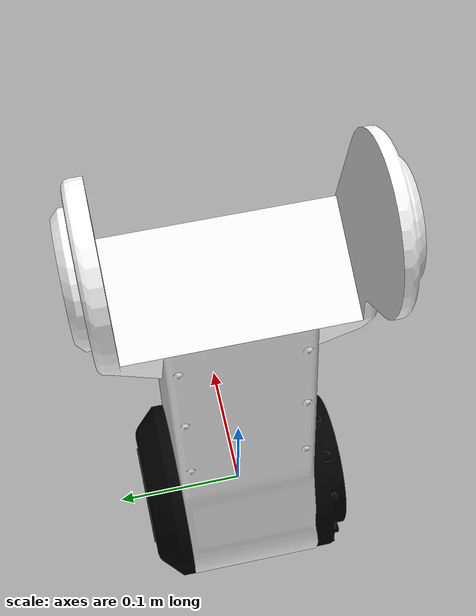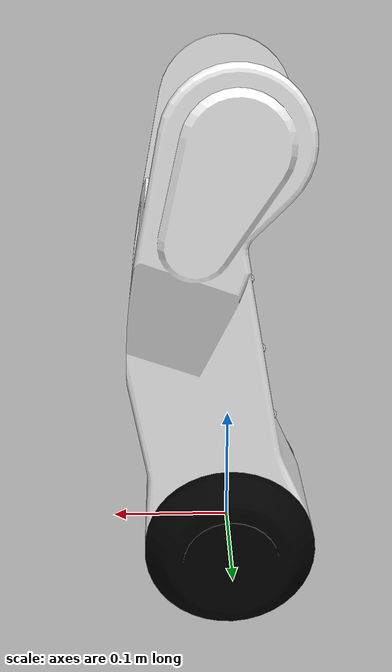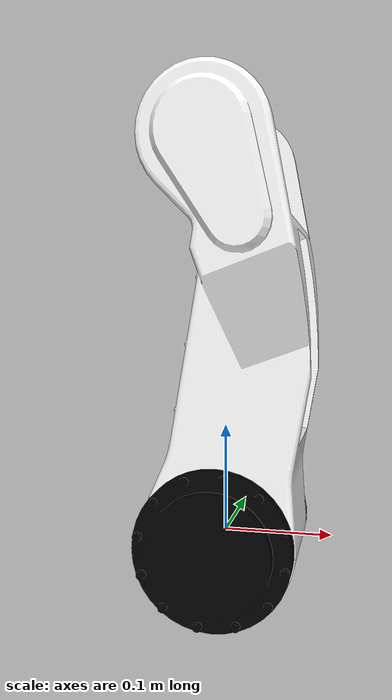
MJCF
<mujoco model="LINK_2">
  <default>
    <default class="visual">
      <geom group="2" type="mesh" contype="0" conaffinity="0"/>
    </default>
    <default class="collision">
      <geom group="3" type="mesh"/>
    </default>
  </default>
  <asset>
    <material name="254,254,255" specular="0.9973853333333333" shininess="1.0" rgba="0.996078 0.996078 1.000000 1.000000"/>
    <material name="0,0,0" specular="1.0" shininess="1.0" rgba="0.000000 0.000000 0.000000 1.000000"/>
    <mesh file="LINK_2_0.obj"/>
    <mesh file="LINK_2_1.obj"/>
    <mesh file="LINK_2_collision_0.obj"/>
    <mesh file="LINK_2_collision_1.obj"/>
    <mesh file="LINK_2_collision_2.obj"/>
    <mesh file="LINK_2_collision_3.obj"/>
    <mesh file="LINK_2_collision_4.obj"/>
    <mesh file="LINK_2_collision_5.obj"/>
    <mesh file="LINK_2_collision_6.obj"/>
    <mesh file="LINK_2_collision_7.obj"/>
    <mesh file="LINK_2_collision_8.obj"/>
    <mesh file="LINK_2_collision_9.obj"/>
    <mesh file="LINK_2_collision_10.obj"/>
    <mesh file="LINK_2_collision_11.obj"/>
    <mesh file="LINK_2_collision_12.obj"/>
    <mesh file="LINK_2_collision_13.obj"/>
    <mesh file="LINK_2_collision_14.obj"/>
    <mesh file="LINK_2_collision_15.obj"/>
    <mesh file="LINK_2_collision_16.obj"/>
  </asset>
  <worldbody>
    <body name="LINK_2">
      <geom mesh="LINK_2_0" material="0,0,0" class="visual"/>
      <geom mesh="LINK_2_1" material="254,254,255" class="visual"/>
      <geom mesh="LINK_2_collision_0" rgba="0.9881459562948371 0.07911082886383558 0.5025785339367144 1" class="collision"/>
      <geom mesh="LINK_2_collision_1" rgba="0.1428355798649732 0.9783507266023447 0.6931488883030398 1" class="collision"/>
      <geom mesh="LINK_2_collision_2" rgba="0.3701911826631461 0.06890323459150216 0.8448797650472752 1" class="collision"/>
      <geom mesh="LINK_2_collision_3" rgba="0.43474642461226254 0.20082670826759974 0.8792419737847551 1" class="collision"/>
      <geom mesh="LINK_2_collision_4" rgba="0.04253283046782341 0.6312111764858562 0.5414332435923888 1" class="collision"/>
      <geom mesh="LINK_2_collision_5" rgba="0.3995210352065226 0.844109225340515 0.5009928549233867 1" class="collision"/>
      <geom mesh="LINK_2_collision_6" rgba="0.21342067918584184 0.5610178887167844 0.14918585526503447 1" class="collision"/>
      <geom mesh="LINK_2_collision_7" rgba="0.7896281242162154 0.7152938730152412 0.2768609103698326 1" class="collision"/>
      <geom mesh="LINK_2_collision_8" rgba="0.21985764849650125 0.15043083220464526 0.27813716500936914 1" class="collision"/>
      <geom mesh="LINK_2_collision_9" rgba="0.06321257990868934 0.02044927081535841 0.43071350113986273 1" class="collision"/>
      <geom mesh="LINK_2_collision_10" rgba="0.6966878125971657 0.08255161158894375 0.8894816866111139 1" class="collision"/>
      <geom mesh="LINK_2_collision_11" rgba="0.7289401515828611 0.53670922245262 0.4587863828061214 1" class="collision"/>
      <geom mesh="LINK_2_collision_12" rgba="0.9791838594509268 0.9497993006726081 0.7563116778928641 1" class="collision"/>
      <geom mesh="LINK_2_collision_13" rgba="0.3125777237068552 0.5057010731403757 0.07399624280794004 1" class="collision"/>
      <geom mesh="LINK_2_collision_14" rgba="0.40021017565283834 0.14445007688673683 0.6569931909659222 1" class="collision"/>
      <geom mesh="LINK_2_collision_15" rgba="0.8169318591502656 0.09629877760567818 0.8868824664176913 1" class="collision"/>
      <geom mesh="LINK_2_collision_16" rgba="0.13038430359387154 0.277917483090487 0.5504215566978491 1" class="collision"/>
    </body>
  </worldbody>
</mujoco>
